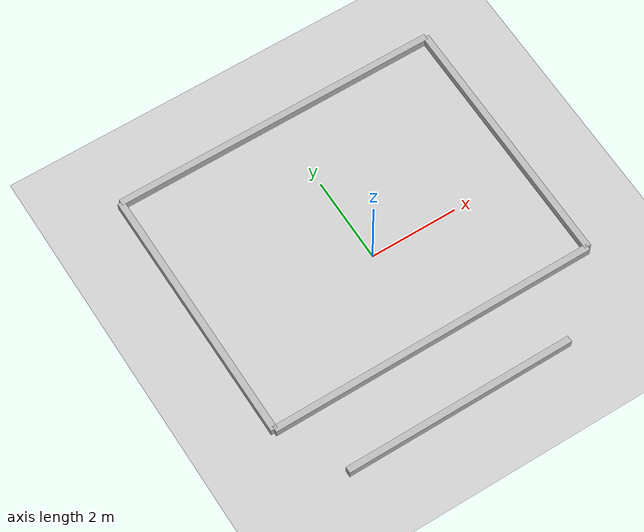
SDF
<?xml version="1.0" ?>
<sdf version="1.6">
  <world name="maze_world">

    <include>
      <uri>model://sun</uri>
    </include>

    <include>
      <uri>model://ground_plane</uri>
    </include>

    <!-- 外框：底墙，右侧留出出口 -->
    <model name="wall_bottom_left">
      <static>true</static>
      <pose>-0.375 -3.75 0.1 0 0 0</pose>
      <link name="link">
        <collision name="collision">
          <geometry>
            <box>
              <size>5.25 0.15 0.2</size>
            </box>
          </geometry>
        </collision>
        <visual name="visual">
          <geometry>
            <box>
              <size>5.25 0.15 0.2</size>
            </box>
          </geometry>
        </visual>
      </link>
    </model>

    <!-- 外框：顶墙 -->
    <model name="wall_top">
      <static>true</static>
      <pose>0 3.75 0.1 0 0 0</pose>
      <link name="link">
        <collision name="collision">
          <geometry>
            <box>
              <size>7.5 0.15 0.2</size>
            </box>
          </geometry>
        </collision>
        <visual name="visual">
          <geometry>
            <box>
              <size>7.5 0.15 0.2</size>
            </box>
          </geometry>
        </visual>
      </link>
    </model>

    <!-- 外框：左墙，上段，下部为入口 -->
    <model name="wall_left_top">
      <static>true</static>
      <pose>-3.75 0.75 0.1 0 0 0</pose>
      <link name="link">
        <collision name="collision">
          <geometry>
            <box>
              <size>0.15 6 0.2</size>
            </box>
          </geometry>
        </collision>
        <visual name="visual">
          <geometry>
            <box>
              <size>0.15 6 0.2</size>
            </box>
          </geometry>
        </visual>
      </link>
    </model>

    <!-- 外框：右墙，上段，下部为出口 -->
    <model name="wall_right_top">
      <static>true</static>
      <pose>3.75 0.75 0.1 0 0 0</pose>
      <link name="link">
        <collision name="collision">
          <geometry>
            <box>
              <size>0.15 6 0.2</size>
            </box>
          </geometry>
        </collision>
        <visual name="visual">
          <geometry>
            <box>
              <size>0.15 6 0.2</size>
            </box>
          </geometry>
        </visual>
      </link>
    </model>

    <!-- 内墙：底部走廊的北墙 -->
    <model name="wall_inner1">
      <static>true</static>
      <pose>0 -2.25 0.1 0 0 0</pose>
      <link name="link">
        <collision name="collision">
          <geometry>
            <box>
              <size>7.5 0.15 0.2</size>
            </box>
          </geometry>
        </collision>
        <visual name="visual">
          <geometry>
            <box>
              <size>7.5 0.15 0.2</size>
            </box>
          </geometry>
        </visual>
      </link>
    </model>

  </world>
</sdf>
